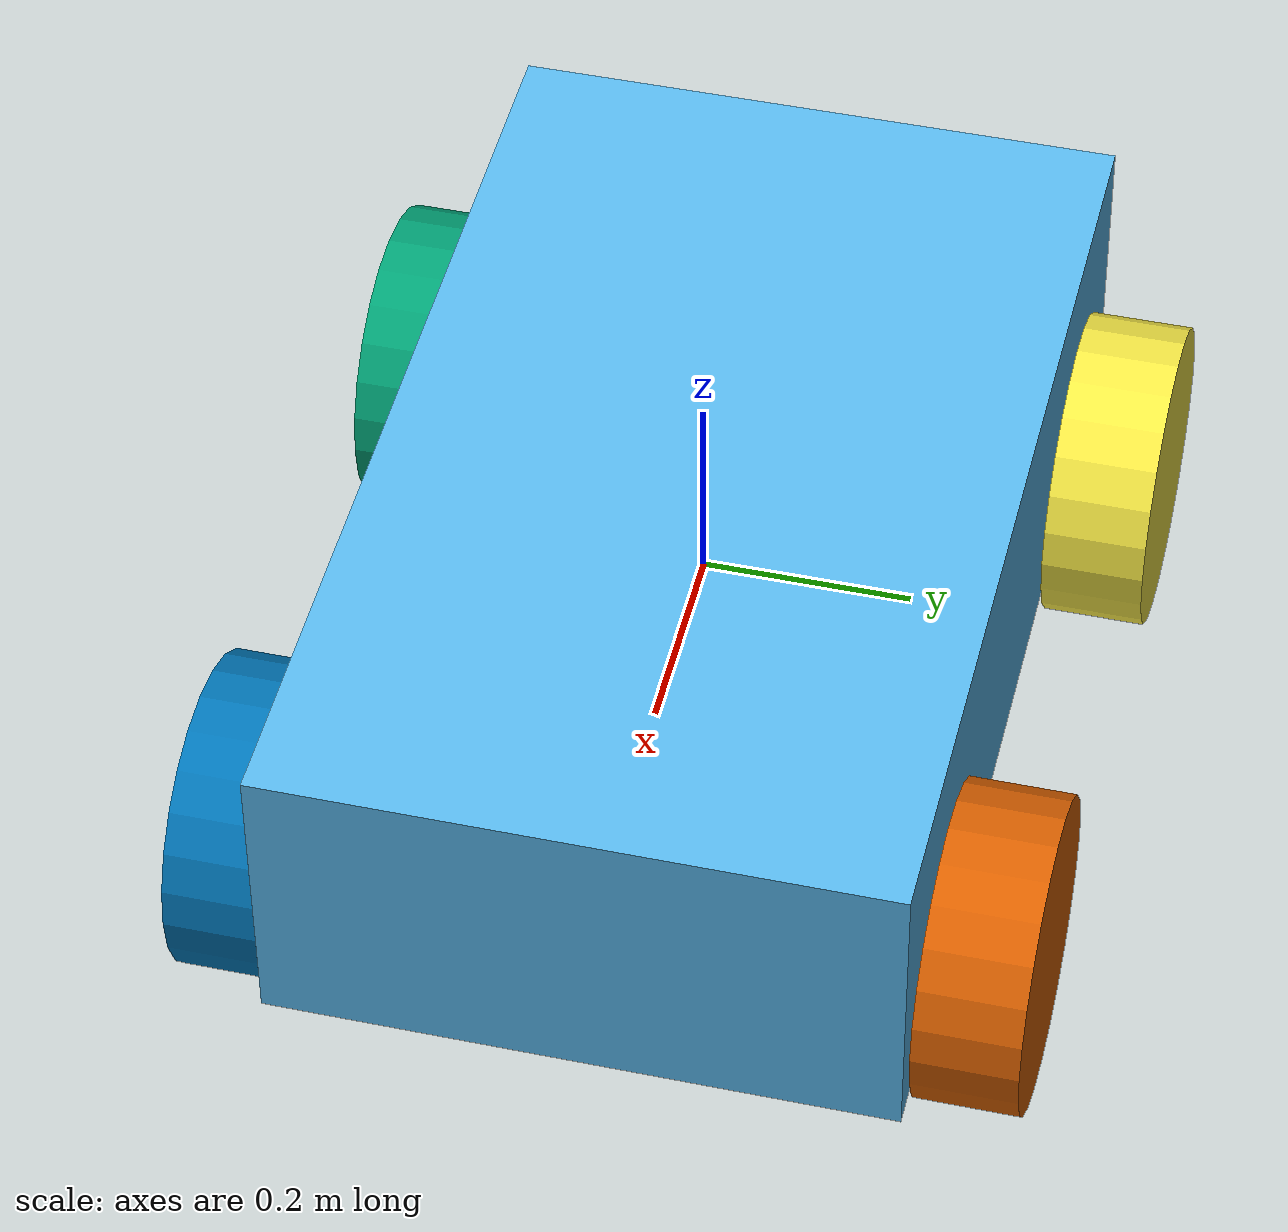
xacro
<?xml version="1.0"?>

<robot name="differential_drive_robot" xmlns:xacro="http://www.ros.org/wiki/xacro">

    <!-- Body Dimensions -->
    <xacro:property name="body_link_x_dim" value="1"/>
    <xacro:property name="body_link_y_dim" value="0.6"/>
    <xacro:property name="body_link_z_dim" value="0.3"/>

    <!-- Wheel Dimensions -->
    <xacro:property name="wheel_link_radius" value="0.15"/>
    <xacro:property name="wheel_link_length" value="0.1"/>
    <xacro:property name="wheel_link_z_location" value="-0.1"/>

    <!-- Material Density -->
    <xacro:property name="body_density" value="2710.0"/>
    <xacro:property name="wheel_density" value="2710.0"/>

    <!-- Pi -->
    <xacro:property name="pi_constant" value="3.1415926"/>

    <!-- Robot Body and Wheel Weight -->
    <xacro:property name="body_mass" value="${body_density * body_link_x_dim * body_link_y_dim * body_link_z_dim}"/>
    <xacro:property name="wheel_mass" value="${wheel_density * pi_constant * wheel_link_radius * wheel_link_radius * wheel_link_length}"/>

    <!-- Moments -->
    <xacro:property name="Iz_wheel" value="${0.5 * wheel_mass * wheel_link_radius * wheel_link_radius}"/>
    <xacro:property name="Ixy_wheel" value="${(1.0)/(12.0)*wheel_mass * (3.0 * wheel_link_radius * wheel_link_radius + wheel_link_length * wheel_link_length)}"/>

    <xacro:macro name="inertia_wheel">
        <inertial>
            <origin xyz = "0 0 0" rpy="0 0 0"/>
            <mass value="${wheel_mass}"/>
            <inertia ixx="${Ixy_wheel}"  iyy="${Ixy_wheel}"  izz="${Iz_wheel}" ixy="0.0" ixz="0.0" iyz="0.0"/>
        </inertial>
    </xacro:macro>

    <!-- define the base link -->
    <link name="dummy"/>
    <joint name="dummy_joint" type="fixed">
        <parent link="dummy"/>
        <child link="body_link"/>
    </joint>

    <link name="body_link">
        <visual>
            <origin xyz="0 0 0" rpy="0 0 0" />
            <geometry>
                <box size="${body_link_x_dim} ${body_link_y_dim} ${body_link_z_dim}"/>
            </geometry>
        </visual>
        <collision>
            <origin xyz="0 0 0" rpy="0 0 0" />
            <geometry>
                <box size="${body_link_x_dim} ${body_link_y_dim} ${body_link_z_dim}"/>
            </geometry>
        </collision>
        <inertial>
            <origin xyz="0 0 0" rpy="0 0 0" />
            <mass value="${body_mass}"/>
            <inertia    ixx="${(1.0)/(12.0)*body_mass*(body_link_y_dim * body_link_y_dim + body_link_z_dim * body_link_z_dim)}"
                        iyy="${(1.0)/(12.0)*body_mass*(body_link_x_dim * body_link_x_dim + body_link_z_dim * body_link_z_dim)}"
                        izz="${(1.0)/(12.0)*body_mass*(body_link_y_dim * body_link_y_dim + body_link_x_dim * body_link_x_dim)}"
                        ixy="0"
                        ixz="0"
                        iyz="0"/>
        </inertial>
    </link>

    <joint name="wheel1_joint" type="continuous">
        <parent link="body_link"/>
        <child link="wheel1_link"/>
        <origin xyz="${-body_link_x_dim/2.0 + 1.2*wheel_link_radius} ${-body_link_y_dim/2.0 - wheel_link_length/2.0} ${wheel_link_z_location}" rpy="0 0 0" />
        <axis xyz="0 1 0"/>
        <limit effort="1000" velocity="1000"/>
        <dynamic damping="1.0" friction="1.0"/>
    </joint>
    <link name="wheel1_link">
        <visual>
            <origin xyz="0 0 0" rpy="${pi_constant/2.0} 0 0" />
            <geometry>
                <cylinder length="${wheel_link_length}" radius="${wheel_link_radius}"/>
            </geometry>
        </visual>
        <collision>
            <origin xyz="0 0 0" rpy="${pi_constant/2.0} 0 0" />
            <geometry>
                <cylinder length="${wheel_link_length}" radius="${wheel_link_radius}"/>
            </geometry>
        </collision>
        <xacro:inertia_wheel/>
    </link>

    <joint name="wheel2_joint" type="continuous">
        <parent link="body_link"/>
        <child link="wheel2_link"/>
        <origin xyz="${-body_link_x_dim/2.0 + 1.2*wheel_link_radius} ${body_link_y_dim/2.0 + wheel_link_length/2.0} ${wheel_link_z_location}" rpy="0 0 0" />
        <axis xyz="0 1 0"/>
        <limit effort="1000" velocity="1000"/>
        <dynamic damping="1.0" friction="1.0"/>
    </joint>
    <link name="wheel2_link">
        <visual>
            <origin xyz="0 0 0" rpy="${pi_constant/2.0} 0 0" />
            <geometry>
                <cylinder length="${wheel_link_length}" radius="${wheel_link_radius}"/>
            </geometry>
        </visual>
        <collision>
            <origin xyz="0 0 0" rpy="${pi_constant/2.0} 0 0" />
            <geometry>
                <cylinder length="${wheel_link_length}" radius="${wheel_link_radius}"/>
            </geometry>
        </collision>
        <xacro:inertia_wheel/>
    </link>

    <joint name="wheel3_joint" type="continuous">
        <parent link="body_link"/>
        <child link="wheel3_link"/>
        <origin xyz="${body_link_x_dim/2.0 - 1.2*wheel_link_radius} ${-body_link_y_dim/2.0 - wheel_link_length/2.0} ${wheel_link_z_location}" rpy="0 0 0" />
        <axis xyz="0 1 0"/>
        <limit effort="1000" velocity="1000"/>
        <dynamic damping="1.0" friction="1.0"/>
    </joint>
    <link name="wheel3_link">
        <visual>
            <origin xyz="0 0 0" rpy="${pi_constant/2.0} 0 0" />
            <geometry>
                <cylinder length="${wheel_link_length}" radius="${wheel_link_radius}"/>
            </geometry>
        </visual>
        <collision>
            <origin xyz="0 0 0" rpy="${pi_constant/2.0} 0 0" />
            <geometry>
                <cylinder length="${wheel_link_length}" radius="${wheel_link_radius}"/>
            </geometry>
        </collision>
        <xacro:inertia_wheel/>
    </link>

    <joint name="wheel4_joint" type="continuous">
        <parent link="body_link"/>
        <child link="wheel4_link"/>
        <origin xyz="${body_link_x_dim/2.0 - 1.2*wheel_link_radius} ${body_link_y_dim/2.0 + wheel_link_length/2.0} ${wheel_link_z_location}" rpy="0 0 0" />
        <axis xyz="0 1 0"/>
        <limit effort="1000" velocity="1000"/>
        <dynamic damping="1.0" friction="1.0"/>
    </joint>
    <link name="wheel4_link">
        <visual>
            <origin xyz="0 0 0" rpy="${pi_constant/2.0} 0 0" />
            <geometry>
                <cylinder length="${wheel_link_length}" radius="${wheel_link_radius}"/>
            </geometry>
        </visual>
        <collision>
            <origin xyz="0 0 0" rpy="${pi_constant/2.0} 0 0" />
            <geometry>
                <cylinder length="${wheel_link_length}" radius="${wheel_link_radius}"/>
            </geometry>
        </collision>
        <xacro:inertia_wheel/>
    </link>

    <transmission name="trans_wheel1_joint">
        <type>transmission_interface/SimpleTransmission</type>
        <joint name="wheel1_joint">
            <hardwareInterface>hardware_interface/VelocityJointInterface</hardwareInterface>
        </joint>
        <actuator name="wheel1_joint_motor">
            <hardwareInterface>hardware_interface/VelocityJointInterface</hardwareInterface>
            <mechanicalReduction>1</mechanicalReduction>
        </actuator>
    </transmission>

    <transmission name="trans_wheel2_joint">
        <type>transmission_interface/SimpleTransmission</type>
        <joint name="wheel2_joint">
            <hardwareInterface>hardware_interface/VelocityJointInterface</hardwareInterface>
        </joint>
        <actuator name="wheel2_joint_motor">
            <hardwareInterface>hardware_interface/VelocityJointInterface</hardwareInterface>
            <mechanicalReduction>1</mechanicalReduction>
        </actuator>
    </transmission>

    <transmission name="trans_wheel3_joint">
        <type>transmission_interface/SimpleTransmission</type>
        <joint name="wheel3_joint">
            <hardwareInterface>hardware_interface/VelocityJointInterface</hardwareInterface>
        </joint>
        <actuator name="wheel3_joint_motor">
            <hardwareInterface>hardware_interface/VelocityJointInterface</hardwareInterface>
            <mechanicalReduction>1</mechanicalReduction>
        </actuator>
    </transmission>
    <transmission name="trans_wheel4_joint">
        <type>transmission_interface/SimpleTransmission</type>
        <joint name="wheel4_joint">
            <hardwareInterface>hardware_interface/VelocityJointInterface</hardwareInterface>
        </joint>
        <actuator name="wheel4_joint_motor">
            <hardwareInterface>hardware_interface/VelocityJointInterface</hardwareInterface>
            <mechanicalReduction>1</mechanicalReduction>
        </actuator>
    </transmission>
</robot>
